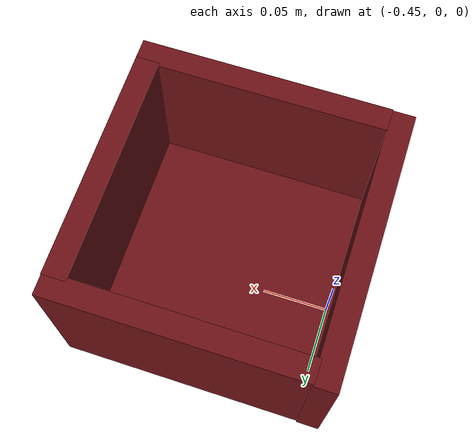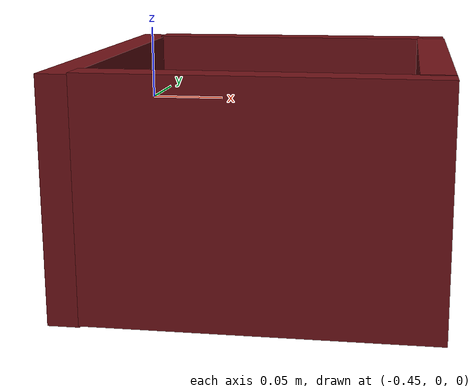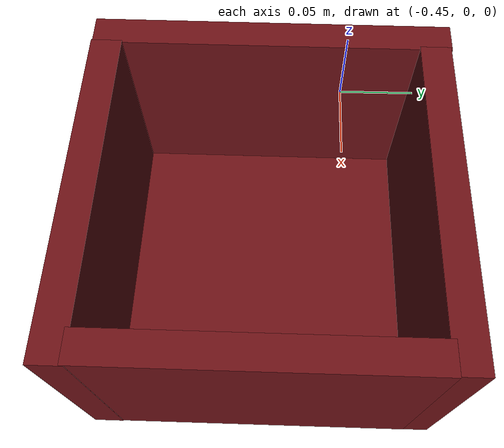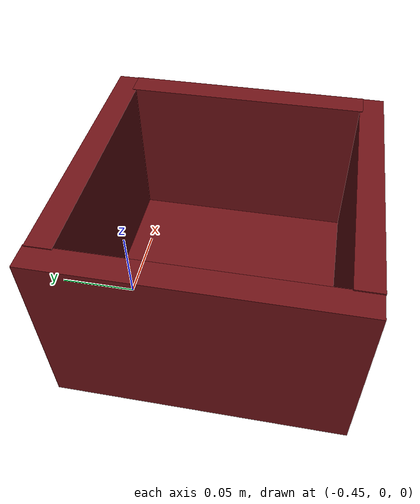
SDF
<?xml version='1.0'?>
<sdf version='1.6'>
  <model name='box_6'>
    <link name='link'>
      <inertial>
        <mass>1</mass>
        <inertia>
          <ixx>0.166667</ixx>
          <ixy>0</ixy>
          <ixz>0</ixz>
          <iyy>0.166667</iyy>
          <iyz>0</iyz>
          <izz>0.166667</izz>
        </inertia>
        <pose frame=''>0 0 0 0 -0 0</pose>
      </inertial>
      <self_collide>0</self_collide>
      <enable_wind>0</enable_wind>
      <kinematic>0</kinematic>
      <pose frame=''>-0.251848 -0.048456 -0.035389 0 -0 0</pose>
      <gravity>1</gravity>
      <visual name='visual'>
        <geometry>
          <box>
            <size>0.02 0.2 0.15</size>
          </box>
        </geometry>
        <material>
          <script>
            <name>Gazebo/Grey</name>
            <uri>file://media/materials/scripts/gazebo.material</uri>
          </script>
          <shader type='pixel'>
            <normal_map>__default__</normal_map>
          </shader>
          <ambient>0.43 0.07 0.09 1</ambient>
          <diffuse>0.43 0.07 0.09 1</diffuse>
          <specular>0.43 0.07 0.09 1</specular>
          <emissive>0 0 0 1</emissive>
        </material>
        <pose frame=''>0 0 0 0 -0 0</pose>
        <transparency>0</transparency>
        <cast_shadows>1</cast_shadows>
      </visual>
      <collision name='collision'>
        <laser_retro>0</laser_retro>
        <max_contacts>10</max_contacts>
        <pose frame=''>0 0 0 0 -0 0</pose>
        <geometry>
          <box>
            <size>0.02 0.2 0.15</size>
          </box>
        </geometry>
        <surface>
          <friction>
            <ode>
              <mu>1</mu>
              <mu2>1</mu2>
              <fdir1>0 0 0</fdir1>
              <slip1>0</slip1>
              <slip2>0</slip2>
            </ode>
            <torsional>
              <coefficient>1</coefficient>
              <patch_radius>0</patch_radius>
              <surface_radius>0</surface_radius>
              <use_patch_radius>1</use_patch_radius>
              <ode>
                <slip>0</slip>
              </ode>
            </torsional>
          </friction>
          <bounce>
            <restitution_coefficient>0</restitution_coefficient>
            <threshold>1e+06</threshold>
          </bounce>
          <contact>
            <collide_without_contact>0</collide_without_contact>
            <collide_without_contact_bitmask>1</collide_without_contact_bitmask>
            <collide_bitmask>1</collide_bitmask>
            <ode>
              <soft_cfm>0</soft_cfm>
              <soft_erp>0.2</soft_erp>
              <kp>1e+13</kp>
              <kd>1</kd>
              <max_vel>0.01</max_vel>
              <min_depth>0</min_depth>
            </ode>
            <bullet>
              <split_impulse>1</split_impulse>
              <split_impulse_penetration_threshold>-0.01</split_impulse_penetration_threshold>
              <soft_cfm>0</soft_cfm>
              <soft_erp>0.2</soft_erp>
              <kp>1e+13</kp>
              <kd>1</kd>
            </bullet>
          </contact>
        </surface>
      </collision>
    </link>
    <link name='link_0'>
      <inertial>
        <mass>1</mass>
        <inertia>
          <ixx>0.166667</ixx>
          <ixy>0</ixy>
          <ixz>0</ixz>
          <iyy>0.166667</iyy>
          <iyz>0</iyz>
          <izz>0.166667</izz>
        </inertia>
        <pose frame=''>0 0 0 0 -0 0</pose>
      </inertial>
      <pose frame=''>-0.359294 -0.047937 -0.100529 0 -3e-06 -0.000963</pose>
      <gravity>1</gravity>
      <self_collide>0</self_collide>
      <kinematic>0</kinematic>
      <enable_wind>0</enable_wind>
      <visual name='visual'>
        <pose frame=''>0 0 0 0 -0 0</pose>
        <geometry>
          <box>
            <size>0.2 0.2 0.02</size>
          </box>
        </geometry>
        <material>
          <lighting>1</lighting>
          <script>
            <uri>file://media/materials/scripts/gazebo.material</uri>
            <name>Gazebo/Grey</name>
          </script>
          <shader type='pixel'>
            <normal_map>__default__</normal_map>
          </shader>
          <ambient>0.43 0.07 0.09 1</ambient>
          <diffuse>0.43 0.07 0.09 1</diffuse>
          <specular>0.43 0.07 0.09 1</specular>
          <emissive>0 0 0 1</emissive>
        </material>
        <transparency>0</transparency>
        <cast_shadows>1</cast_shadows>
      </visual>
      <collision name='collision'>
        <laser_retro>0</laser_retro>
        <max_contacts>10</max_contacts>
        <pose frame=''>0 0 0 0 -0 0</pose>
        <geometry>
          <box>
            <size>0.2 0.2 0.02</size>
          </box>
        </geometry>
        <surface>
          <friction>
            <ode>
              <mu>1</mu>
              <mu2>1</mu2>
              <fdir1>0 0 0</fdir1>
              <slip1>0</slip1>
              <slip2>0</slip2>
            </ode>
            <torsional>
              <coefficient>1</coefficient>
              <patch_radius>0</patch_radius>
              <surface_radius>0</surface_radius>
              <use_patch_radius>1</use_patch_radius>
              <ode>
                <slip>0</slip>
              </ode>
            </torsional>
          </friction>
          <bounce>
            <restitution_coefficient>0</restitution_coefficient>
            <threshold>1e+06</threshold>
          </bounce>
          <contact>
            <collide_without_contact>0</collide_without_contact>
            <collide_without_contact_bitmask>1</collide_without_contact_bitmask>
            <collide_bitmask>1</collide_bitmask>
            <ode>
              <soft_cfm>0</soft_cfm>
              <soft_erp>0.2</soft_erp>
              <kp>1e+13</kp>
              <kd>1</kd>
              <max_vel>0.01</max_vel>
              <min_depth>0</min_depth>
            </ode>
            <bullet>
              <split_impulse>1</split_impulse>
              <split_impulse_penetration_threshold>-0.01</split_impulse_penetration_threshold>
              <soft_cfm>0</soft_cfm>
              <soft_erp>0.2</soft_erp>
              <kp>1e+13</kp>
              <kd>1</kd>
            </bullet>
          </contact>
        </surface>
      </collision>
    </link>
    <link name='link_clone'>
      <inertial>
        <mass>1</mass>
        <inertia>
          <ixx>0.166667</ixx>
          <ixy>0</ixy>
          <ixz>0</ixz>
          <iyy>0.166667</iyy>
          <iyz>0</iyz>
          <izz>0.166667</izz>
        </inertia>
        <pose frame=''>0 0 0 0 -0 0</pose>
      </inertial>
      <self_collide>0</self_collide>
      <enable_wind>0</enable_wind>
      <kinematic>0</kinematic>
      <pose frame=''>-0.464691 -0.047916 -0.036757 0 -3e-06 -0.000963</pose>
      <gravity>1</gravity>
      <visual name='visual'>
        <geometry>
          <box>
            <size>0.02 0.234 0.15</size>
          </box>
        </geometry>
        <material>
          <script>
            <name>Gazebo/Grey</name>
            <uri>file://media/materials/scripts/gazebo.material</uri>
          </script>
          <shader type='pixel'>
            <normal_map>__default__</normal_map>
          </shader>
          <ambient>0.43 0.07 0.09 1</ambient>
          <diffuse>0.43 0.07 0.09 1</diffuse>
          <specular>0.43 0.07 0.09 1</specular>
          <emissive>0 0 0 1</emissive>
        </material>
        <pose frame=''>0 0 0 0 -0 0</pose>
        <transparency>0</transparency>
        <cast_shadows>1</cast_shadows>
      </visual>
      <collision name='collision'>
        <laser_retro>0</laser_retro>
        <max_contacts>10</max_contacts>
        <pose frame=''>0 0 0 0 -0 0</pose>
        <geometry>
          <box>
            <size>0.02 0.234 0.15</size>
          </box>
        </geometry>
        <surface>
          <friction>
            <ode>
              <mu>1</mu>
              <mu2>1</mu2>
              <fdir1>0 0 0</fdir1>
              <slip1>0</slip1>
              <slip2>0</slip2>
            </ode>
            <torsional>
              <coefficient>1</coefficient>
              <patch_radius>0</patch_radius>
              <surface_radius>0</surface_radius>
              <use_patch_radius>1</use_patch_radius>
              <ode>
                <slip>0</slip>
              </ode>
            </torsional>
          </friction>
          <bounce>
            <restitution_coefficient>0</restitution_coefficient>
            <threshold>1e+06</threshold>
          </bounce>
          <contact>
            <collide_without_contact>0</collide_without_contact>
            <collide_without_contact_bitmask>1</collide_without_contact_bitmask>
            <collide_bitmask>1</collide_bitmask>
            <ode>
              <soft_cfm>0</soft_cfm>
              <soft_erp>0.2</soft_erp>
              <kp>1e+13</kp>
              <kd>1</kd>
              <max_vel>0.01</max_vel>
              <min_depth>0</min_depth>
            </ode>
            <bullet>
              <split_impulse>1</split_impulse>
              <split_impulse_penetration_threshold>-0.01</split_impulse_penetration_threshold>
              <soft_cfm>0</soft_cfm>
              <soft_erp>0.2</soft_erp>
              <kp>1e+13</kp>
              <kd>1</kd>
            </bullet>
          </contact>
        </surface>
      </collision>
    </link>
    <link name='link_clone_0'>
      <inertial>
        <mass>1.12981</mass>
        <inertia>
          <ixx>0.0153724</ixx>
          <ixy>0</ixy>
          <ixz>0</ixz>
          <iyy>0.00459456</iyy>
          <iyz>0</iyz>
          <izz>0.0108531</izz>
        </inertia>
        <pose frame=''>0 0 0 0 -0 0</pose>
      </inertial>
      <self_collide>0</self_collide>
      <enable_wind>0</enable_wind>
      <kinematic>0</kinematic>
      <pose frame=''>-0.349185 0.058201 -0.035748 0.002377 1.1e-05 -1.57022</pose>
      <gravity>1</gravity>
      <visual name='visual'>
        <geometry>
          <box>
            <size>0.02 0.214 0.15</size>
          </box>
        </geometry>
        <material>
          <script>
            <name>Gazebo/Grey</name>
            <uri>file://media/materials/scripts/gazebo.material</uri>
          </script>
          <shader type='pixel'>
            <normal_map>__default__</normal_map>
          </shader>
          <ambient>0.43 0.07 0.09 1</ambient>
          <diffuse>0.43 0.07 0.09 1</diffuse>
          <specular>0.43 0.07 0.09 1</specular>
          <emissive>0 0 0 1</emissive>
        </material>
        <pose frame=''>0 0 0 0 -0 0</pose>
        <transparency>0</transparency>
        <cast_shadows>1</cast_shadows>
      </visual>
      <collision name='collision'>
        <laser_retro>0</laser_retro>
        <max_contacts>10</max_contacts>
        <pose frame=''>0 0 0 0 -0 0</pose>
        <geometry>
          <box>
            <size>0.02 0.214 0.15</size>
          </box>
        </geometry>
        <surface>
          <friction>
            <ode>
              <mu>1</mu>
              <mu2>1</mu2>
              <fdir1>0 0 0</fdir1>
              <slip1>0</slip1>
              <slip2>0</slip2>
            </ode>
            <torsional>
              <coefficient>1</coefficient>
              <patch_radius>0</patch_radius>
              <surface_radius>0</surface_radius>
              <use_patch_radius>1</use_patch_radius>
              <ode>
                <slip>0</slip>
              </ode>
            </torsional>
          </friction>
          <bounce>
            <restitution_coefficient>0</restitution_coefficient>
            <threshold>1e+06</threshold>
          </bounce>
          <contact>
            <collide_without_contact>0</collide_without_contact>
            <collide_without_contact_bitmask>1</collide_without_contact_bitmask>
            <collide_bitmask>1</collide_bitmask>
            <ode>
              <soft_cfm>0</soft_cfm>
              <soft_erp>0.2</soft_erp>
              <kp>1e+13</kp>
              <kd>1</kd>
              <max_vel>0.01</max_vel>
              <min_depth>0</min_depth>
            </ode>
            <bullet>
              <split_impulse>1</split_impulse>
              <split_impulse_penetration_threshold>-0.01</split_impulse_penetration_threshold>
              <soft_cfm>0</soft_cfm>
              <soft_erp>0.2</soft_erp>
              <kp>1e+13</kp>
              <kd>1</kd>
            </bullet>
          </contact>
        </surface>
      </collision>
    </link>
    <link name='link_clone_0_clone'>
      <inertial>
        <mass>1.12981</mass>
        <inertia>
          <ixx>0.0153724</ixx>
          <ixy>0</ixy>
          <ixz>0</ixz>
          <iyy>0.00459456</iyy>
          <iyz>0</iyz>
          <izz>0.0108531</izz>
        </inertia>
        <pose frame=''>0 0 0 0 -0 0</pose>
      </inertial>
      <self_collide>0</self_collide>
      <enable_wind>0</enable_wind>
      <kinematic>0</kinematic>
      <pose frame=''>-0.34869 -0.155595 -0.035811 6e-06 2.2e-05 -1.57349</pose>
      <gravity>1</gravity>
      <visual name='visual'>
        <geometry>
          <box>
            <size>0.02 0.214 0.15</size>
          </box>
        </geometry>
        <material>
          <script>
            <name>Gazebo/Grey</name>
            <uri>file://media/materials/scripts/gazebo.material</uri>
          </script>
          <shader type='pixel'>
            <normal_map>__default__</normal_map>
          </shader>
          <ambient>0.43 0.07 0.09 1</ambient>
          <diffuse>0.43 0.07 0.09 1</diffuse>
          <specular>0.43 0.07 0.09 1</specular>
          <emissive>0 0 0 1</emissive>
        </material>
        <pose frame=''>0 0 0 0 -0 0</pose>
        <transparency>0</transparency>
        <cast_shadows>1</cast_shadows>
      </visual>
      <collision name='collision'>
        <laser_retro>0</laser_retro>
        <max_contacts>10</max_contacts>
        <pose frame=''>0 0 0 0 -0 0</pose>
        <geometry>
          <box>
            <size>0.02 0.214 0.15</size>
          </box>
        </geometry>
        <surface>
          <friction>
            <ode>
              <mu>1</mu>
              <mu2>1</mu2>
              <fdir1>0 0 0</fdir1>
              <slip1>0</slip1>
              <slip2>0</slip2>
            </ode>
            <torsional>
              <coefficient>1</coefficient>
              <patch_radius>0</patch_radius>
              <surface_radius>0</surface_radius>
              <use_patch_radius>1</use_patch_radius>
              <ode>
                <slip>0</slip>
              </ode>
            </torsional>
          </friction>
          <bounce>
            <restitution_coefficient>0</restitution_coefficient>
            <threshold>1e+06</threshold>
          </bounce>
          <contact>
            <collide_without_contact>0</collide_without_contact>
            <collide_without_contact_bitmask>1</collide_without_contact_bitmask>
            <collide_bitmask>1</collide_bitmask>
            <ode>
              <soft_cfm>0</soft_cfm>
              <soft_erp>0.2</soft_erp>
              <kp>1e+13</kp>
              <kd>1</kd>
              <max_vel>0.01</max_vel>
              <min_depth>0</min_depth>
            </ode>
            <bullet>
              <split_impulse>1</split_impulse>
              <split_impulse_penetration_threshold>-0.01</split_impulse_penetration_threshold>
              <soft_cfm>0</soft_cfm>
              <soft_erp>0.2</soft_erp>
              <kp>1e+13</kp>
              <kd>1</kd>
            </bullet>
          </contact>
        </surface>
      </collision>
    </link>
    <joint name='link_0_JOINT_0_0' type='fixed'>
      <parent>link_0</parent>
      <child>link_clone_0</child>
      <pose frame=''>0 0 0 0 -0 0</pose>
      <physics>
        <ode>
          <limit>
            <cfm>0</cfm>
            <erp>0.2</erp>
          </limit>
          <suspension>
            <cfm>0</cfm>
            <erp>0.2</erp>
          </suspension>
        </ode>
      </physics>
    </joint>
    <joint name='link_0_JOINT_0' type='fixed'>
      <parent>link_0</parent>
      <child>link</child>
      <pose frame=''>0 0 0 0 -0 0</pose>
      <physics>
        <ode>
          <limit>
            <cfm>0</cfm>
            <erp>0.2</erp>
          </limit>
          <suspension>
            <cfm>0</cfm>
            <erp>0.2</erp>
          </suspension>
        </ode>
      </physics>
    </joint>
    <joint name='link_0_JOINT_1' type='fixed'>
      <parent>link_0</parent>
      <child>link_clone</child>
      <pose frame=''>0 0 0 0 -0 0</pose>
      <physics>
        <ode>
          <limit>
            <cfm>0</cfm>
            <erp>0.2</erp>
          </limit>
          <suspension>
            <cfm>0</cfm>
            <erp>0.2</erp>
          </suspension>
        </ode>
      </physics>
    </joint>
    <joint name='link_0_JOINT_3' type='fixed'>
      <parent>link_0</parent>
      <child>link_clone_0_clone</child>
      <pose frame=''>0 0 0 0 -0 0</pose>
      <physics>
        <ode>
          <limit>
            <cfm>0</cfm>
            <erp>0.2</erp>
          </limit>
          <suspension>
            <cfm>0</cfm>
            <erp>0.2</erp>
          </suspension>
        </ode>
      </physics>
    </joint>
    <joint name='link_JOINT_1' type='fixed'>
      <parent>link</parent>
      <child>link_clone_0</child>
      <pose frame=''>0 0 0 0 -0 0</pose>
      <physics>
        <ode>
          <limit>
            <cfm>0</cfm>
            <erp>0.2</erp>
          </limit>
          <suspension>
            <cfm>0</cfm>
            <erp>0.2</erp>
          </suspension>
        </ode>
      </physics>
    </joint>
    <joint name='link_JOINT_4' type='fixed'>
      <parent>link</parent>
      <child>link_clone_0_clone</child>
      <pose frame=''>0 0 0 0 -0 0</pose>
      <physics>
        <ode>
          <limit>
            <cfm>0</cfm>
            <erp>0.2</erp>
          </limit>
          <suspension>
            <cfm>0</cfm>
            <erp>0.2</erp>
          </suspension>
        </ode>
      </physics>
    </joint>
    <joint name='link_clone_JOINT_2' type='fixed'>
      <parent>link_clone</parent>
      <child>link_clone_0</child>
      <pose frame=''>0 0 0 0 -0 0</pose>
      <physics>
        <ode>
          <limit>
            <cfm>0</cfm>
            <erp>0.2</erp>
          </limit>
          <suspension>
            <cfm>0</cfm>
            <erp>0.2</erp>
          </suspension>
        </ode>
      </physics>
    </joint>
    <joint name='link_clone_JOINT_5' type='revolute'>
      <parent>link_clone</parent>
      <child>link_clone_0_clone</child>
      <pose frame=''>0 0 0 0 -0 0</pose>
      <axis>
        <xyz>1 0 0</xyz>
        <use_parent_model_frame>0</use_parent_model_frame>
        <limit>
          <lower>-1.79769e+308</lower>
          <upper>1.79769e+308</upper>
          <effort>-1</effort>
          <velocity>-1</velocity>
        </limit>
        <dynamics>
          <spring_reference>0</spring_reference>
          <spring_stiffness>0</spring_stiffness>
          <damping>0</damping>
          <friction>0</friction>
        </dynamics>
      </axis>
      <physics>
        <ode>
          <limit>
            <cfm>0</cfm>
            <erp>0.2</erp>
          </limit>
          <suspension>
            <cfm>0</cfm>
            <erp>0.2</erp>
          </suspension>
        </ode>
      </physics>
    </joint>
    <static>0</static>
    <allow_auto_disable>1</allow_auto_disable>
  </model>
</sdf>
